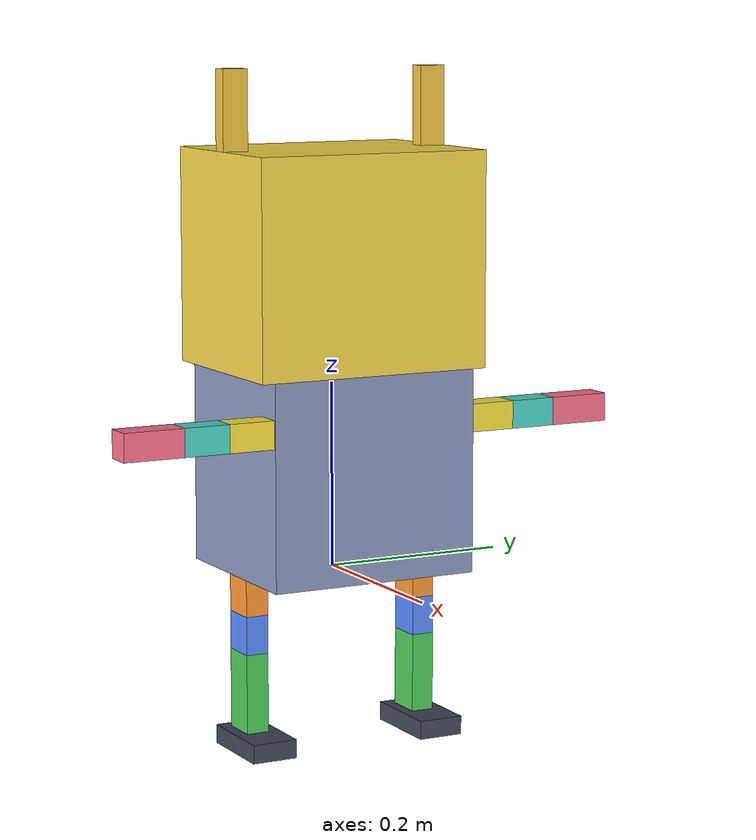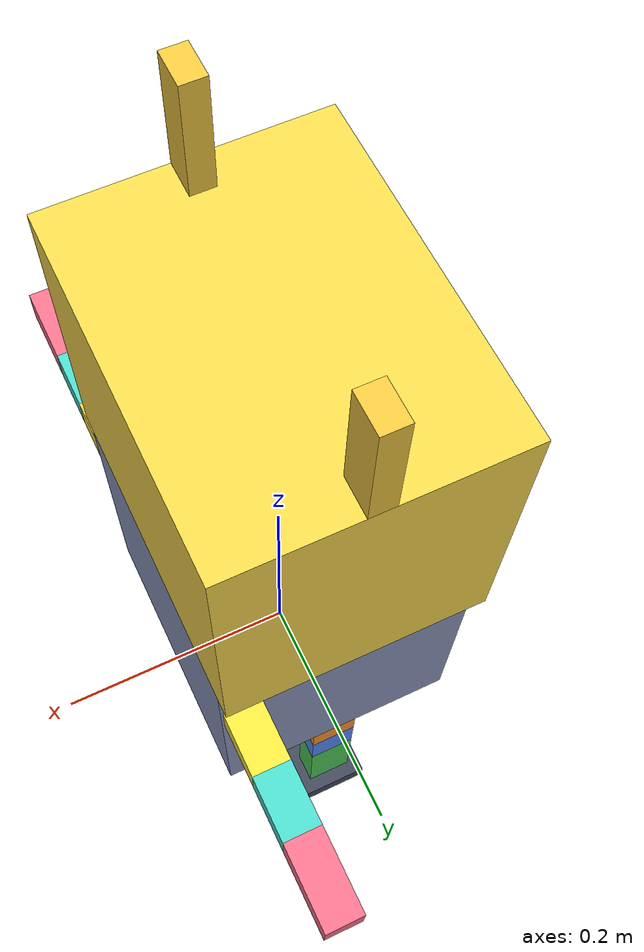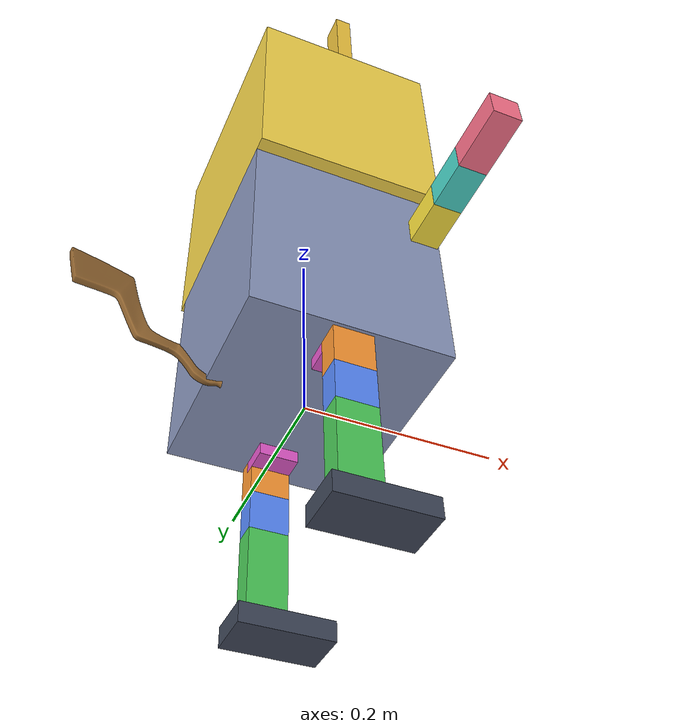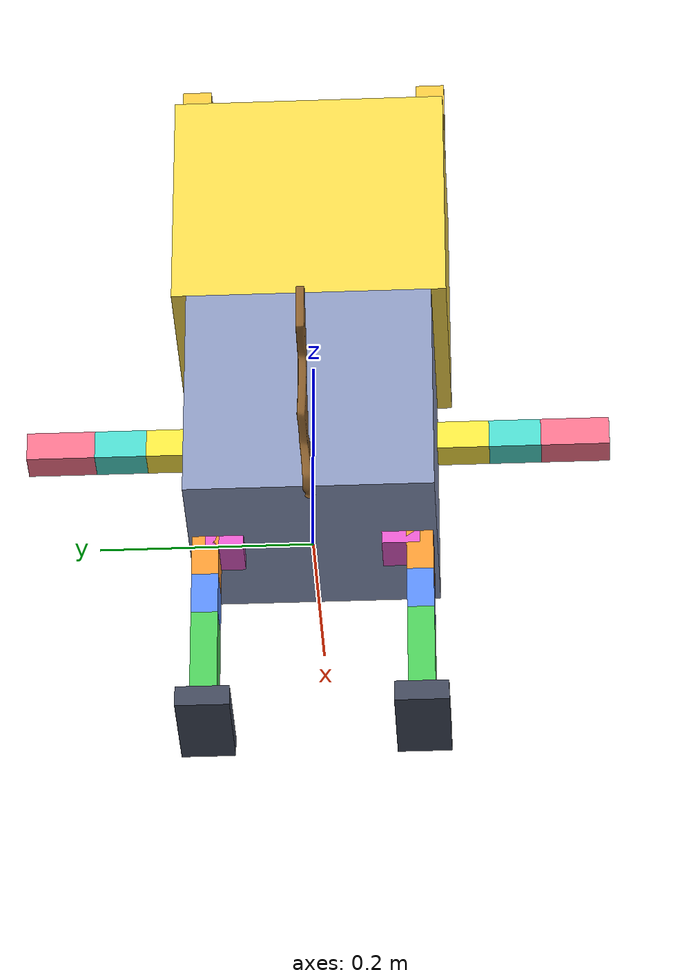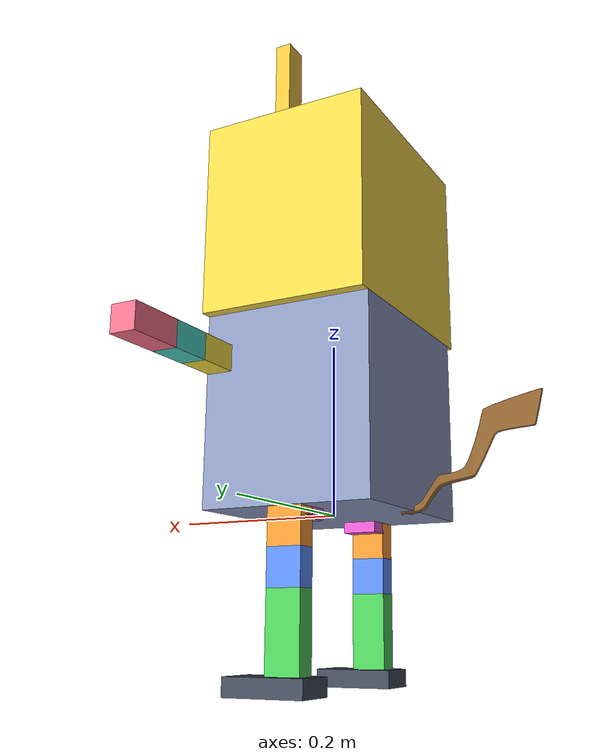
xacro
<?xml version="1.0"?>
<robot name="pikachu_sample_links" xmlns:xacro="http://www.ros.org/wiki/xacro">

  <!-- ① 工程主参数：14 项测量的唯一真相源（SI 单位：m）       -->
  <xacro:property name="tune_profile" value="pikachu_27dof_v1"/>
  <xacro:property name="tune_measurement_tolerance" value="0.0005"/>

  <xacro:property name="measure_ear_root_height"             value="0.449"/>
  <xacro:property name="measure_ear_root_half_width"         value="0.116"/>
  <xacro:property name="measure_head_pitch_height"           value="0.219"/>
  <xacro:property name="measure_shoulder_half_width"         value="0.116"/>
  <xacro:property name="measure_arm_plane_offset_x"          value="0.083"/>
  <xacro:property name="measure_upper_arm_length"            value="0.100"/>
  <xacro:property name="measure_forearm_length"              value="0.066"/>
  <xacro:property name="measure_hip_roll_half_width"         value="0.100"/>
  <xacro:property name="measure_torso_length"                value="0.166"/>
  <xacro:property name="measure_thigh_length"                value="0.083"/>
  <xacro:property name="measure_shank_length"                value="0.086"/>
  <xacro:property name="measure_foot_length_x"               value="0.093"/>
  <xacro:property name="measure_tail_axis_height_from_ankle" value="0.166"/>
  <xacro:property name="measure_tail_center_offset_x"        value="0.143"/>

  <!-- ② 派生参数：宏只引用这些别名；禁止在下游重复写测量常量 -->
  <xacro:property name="shoulder_width"     value="${measure_shoulder_half_width}"/>
  <xacro:property name="arm_forward_offset" value="${measure_arm_plane_offset_x}"/>
  <xacro:property name="upper_arm_len"      value="${measure_upper_arm_length}"/>
  <xacro:property name="lower_arm_len"      value="${measure_forearm_length}"/>
  <xacro:property name="torso_len"          value="${measure_torso_length}"/>
  <xacro:property name="thigh_len"          value="${measure_thigh_length}"/>
  <xacro:property name="shank_len"          value="${measure_shank_length}"/>
  <xacro:property name="foot_len"           value="${measure_foot_length_x}"/>
  <xacro:property name="hip_width"          value="${measure_hip_roll_half_width}"/>
  <xacro:property name="head_height"        value="${measure_head_pitch_height}"/>
  <xacro:property name="ear_height"         value="${measure_ear_root_height}"/>

  <!-- arm_pitch 与 arm_roll 轴严格共点；不再用隐含的 20 mm 肩连杆抵消肩宽。 -->
  <xacro:property name="arm_pitch_to_roll_y" value="${0.0}"/>
  <xacro:property name="arm_y_offset"   value="${shoulder_width}"/>
  <xacro:property name="arm_x_offset"   value="${arm_forward_offset}"/>
  <xacro:property name="arm_upper_z"    value="${upper_arm_len/2.0}"/>
  <xacro:property name="arm_lower_z"    value="${upper_arm_len/2.0}"/>
  <xacro:property name="shoulder_height" value="${torso_len}"/>

  <!-- hip_pitch→knee 的 z 差由髋部下段与大腿段各承担一半。 -->
  <xacro:property name="thigh_length"   value="${thigh_len/2.0}"/>
  <xacro:property name="shank_length"   value="${shank_len}"/>
  <xacro:property name="foot_len_x"     value="${foot_len}"/>

  <!-- ankle 轴 z=-(thigh+shank)，因此 tail_root_z 可严格闭环 M13。 -->
  <xacro:property name="tail_root_z" value="${-thigh_len - shank_len + measure_tail_axis_height_from_ankle}"/>

  <!-- ③ 其他细则：厚度 / 局部偏移 / 限位 / 尺寸 / 材质，按部件分区   -->
  <!-- base -->
  <!-- 骨盆半宽：躯干盒 y 宽 = 2×此（髋关节定位现由①hip_width 独立，与此解耦） -->
  <xacro:property name="pelvis_half_width" value="0.116"/>
  <!-- 躯干盒 x(前后) 厚度 -->
  <xacro:property name="torso_len_x"       value="0.2"/>
  <!-- 躯干盒 z(上下) 高度（肩关节定位现由①shoulder_height 独立，与此解耦 166） -->
  <xacro:property name="base_height"       value="0.219"/>

  <!-- leg -->
  <!-- hip_pitch→hip_roll 关节沿 y 偏移（骨盆横向段） -->
  <xacro:property name="hip_pitch_to_roll_y" value="0.0355"/>
  <!-- hip_roll→hip_yaw 关节沿 -z 偏移（骨盆下沿段）；与大腿段对分 hip_pitch→knee 总长 -->
  <xacro:property name="hip_roll_to_yaw_z"   value="${thigh_len/2}"/>
  <!-- 腿 box x(前后) 厚 -->
  <xacro:property name="leg_thick_x" value="0.04"/>
  <!-- 腿 box y(内外) 厚 -->
  <xacro:property name="leg_width_y" value="0.025"/>
  <xacro:property name="foot_wid_y" value="0.05"/>
  <xacro:property name="foot_hgt_z" value="0.02"/>
  <!-- arm -->
  <!-- 共点串联关节的数值稳定用小盒；不参与人体尺寸定义 -->
  <xacro:property name="joint_marker_size" value="0.004"/>
  <!-- 臂 box x / y 厚 -->
  <xacro:property name="arm_thick_x" value="0.03"/>
  <xacro:property name="arm_width_y" value="0.03"/>
  <!-- 臂 pitch/roll/yaw/elbow 关节限位（弧度） -->
  <xacro:property name="arm_lim_min" value="-1.57"/>
  <xacro:property name="arm_lim_max" value="1.57"/>
  <!-- head -->
  <xacro:property name="head_len_x"         value="0.2"/>
  <xacro:property name="head_wid_y"         value="0.26"/>
  <xacro:property name="head_hgt_z"         value="0.23"/>
  <!-- 头底部(转轴) 相对躯干顶的抬升 = 头高 - 躯干长（不含 box 半高，box 尺寸独立） -->
  <xacro:property name="head_bottom_offset" value="${head_height - shoulder_height}"/>
  <!-- 头关节限位（弧度） -->
  <xacro:property name="head_lim_min" value="-0.8"/>
  <xacro:property name="head_lim_max" value="0.8"/>
  <!-- ear -->
  <!-- 耳朵 横向偏移 / 全长 / 厚 / 宽 / 限位 -->
  <xacro:property name="ear_off_y"   value="${measure_ear_root_half_width}"/>
  <xacro:property name="ear_len"     value="0.085"/>
  <xacro:property name="ear_thick_x" value="0.018"/>
  <xacro:property name="ear_width_y" value="0.028"/>
  <xacro:property name="ear_lim_min" value="-0.6"/>
  <xacro:property name="ear_lim_max" value="0.8"/>
  <!-- 耳根相对 head_roll_link 原点(头底部中心/转轴) 的 z 抬升 = 耳高 - 头高；只抬升耳朵，头保持原位 -->
  <xacro:property name="ear_root_z" value="${ear_height - head_height}"/>
  <!-- tail -->
  <!-- 尾 box 全长 / 横向宽 / 厚 / 限位 -->
  <xacro:property name="tail_len"   value="0.095"/>
  <xacro:property name="tail_wid"   value="0.050"/>
  <xacro:property name="tail_thick" value="0.02"/>
  <xacro:property name="tail_lim_min" value="-1.2"/>
  <xacro:property name="tail_lim_max" value="1.2"/>
  <!-- 尾根位置由“尾 box 中心偏置”反推：root_x-tail_len/2 = -M14 -->
  <xacro:property name="tail_root_x" value="${-measure_tail_center_offset_x + tail_len/2.0}"/>
  <!-- ============ link box 边长（解耦：box 尺寸现独立；box 中心位置仍由①②关节距离定位） ============ -->
  <!-- 躯干 box -->
  <!-- 躯干盒 y 宽 = 骨盆半宽×2 -->
  <xacro:property name="torso_wid_y" value="${pelvis_half_width*2}"/>
  <!-- 躯干盒 z 高 = base_height（独立解耦，不再借用肩高） -->
  <xacro:property name="torso_hgt_z" value="${base_height}"/>
  <!-- 腿 box 各段长（截面 leg_thick_x / leg_width_y 见上） -->
  <!-- hip_pitch_link 横向(y)边长 -->
  <xacro:property name="leg_hip_pitch_box_len" value="${hip_pitch_to_roll_y}"/>
  <!-- hip_roll_link 骨盆段 z 边长 -->
  <xacro:property name="leg_hip_roll_box_len"  value="${hip_roll_to_yaw_z}"/>
  <!-- hip_yaw_link 大腿段 z 边长 -->
  <xacro:property name="leg_thigh_box_len"     value="${thigh_length}"/>
  <!-- knee_link 小腿段 z 边长 -->
  <xacro:property name="leg_shank_box_len"     value="${shank_length}"/>
  <!-- 臂 box 各段长（截面 arm_thick_x / arm_width_y 见上） -->
  <!-- arm_pitch_link 是 pitch/roll 共点的小型关节标记，不占用大臂长 -->
  <xacro:property name="arm_pitch_box_len" value="${joint_marker_size}"/>
  <!-- arm_roll_link 大臂 roll 段 z 边长 -->
  <xacro:property name="arm_roll_box_len"  value="${arm_upper_z}"/>
  <!-- arm_yaw_link 大臂 yaw 段 z 边长 -->
  <xacro:property name="arm_yaw_box_len"   value="${arm_lower_z}"/>
  <!-- elbow_link 小臂(手)段 z 边长 = 小臂长 -->
  <xacro:property name="arm_elbow_box_len" value="${lower_arm_len}"/>

  <!-- 材质（仅便于视觉区分；相邻关节不同色，左右对称） -->
  <!-- 躯干：淡蓝灰 -->
  <xacro:property name="mat_torso"   value="0.55 0.60 0.75 1"/>
  <!-- 臂段A(arm_pitch 肩)：紫 -->
  <xacro:property name="mat_arm_pitch"     value="0.75 0.35 1.00 1"/>
  <!-- 臂段B(arm_roll 上臂)：黄 -->
  <xacro:property name="mat_arm_roll"      value="1.00 0.90 0.25 1"/>
  <!-- 臂段C(arm_yaw 下臂)：青 -->
  <xacro:property name="mat_arm_yaw"       value="0.30 0.85 0.80 1"/>
  <!-- 臂段D(elbow 手)：珊瑚 -->
  <xacro:property name="mat_arm_elbow"     value="1.00 0.45 0.55 1"/>
  <!-- 腿段A(hip_pitch)：品红 -->
  <xacro:property name="mat_leg_hip_pitch" value="0.90 0.35 0.80 1"/>
  <!-- 腿段B(hip_roll)：橙 -->
  <xacro:property name="mat_leg_hip_roll"  value="1.00 0.60 0.20 1"/>
  <!-- 腿段C(hip_yaw 大腿)：蓝 -->
  <xacro:property name="mat_leg_hip_yaw"   value="0.35 0.55 1.00 1"/>
  <!-- 腿段D(knee 小腿)：绿 -->
  <xacro:property name="mat_leg_knee"      value="0.30 0.80 0.35 1"/>
  <!-- 腿段E(ankle 脚)：深灰蓝 -->
  <xacro:property name="mat_leg_ankle"     value="0.25 0.28 0.35 1"/>
  <!-- 头：亮黄 -->
  <xacro:property name="mat_head"    value="0.98 0.85 0.30 1"/>
  <!-- 耳朵：亮黄 -->
  <xacro:property name="mat_ear"         value="0.95 0.78 0.25 1"/>
  <!-- 尾巴：棕 -->
  <xacro:property name="mat_tail"        value="0.55 0.38 0.18 1"/>

  <!-- 材质定义（每段独立颜色，左右对称共用同一套）              -->
  <material name="torso_blue">
    <color rgba="${mat_torso}"/>
  </material>
  <material name="arm_pitch">
    <color rgba="${mat_arm_pitch}"/>
  </material>
  <material name="arm_roll">
    <color rgba="${mat_arm_roll}"/>
  </material>
  <material name="arm_yaw">
    <color rgba="${mat_arm_yaw}"/>
  </material>
  <material name="arm_elbow">
    <color rgba="${mat_arm_elbow}"/>
  </material>
  <material name="leg_hip_pitch">
    <color rgba="${mat_leg_hip_pitch}"/>
  </material>
  <material name="leg_hip_roll">
    <color rgba="${mat_leg_hip_roll}"/>
  </material>
  <material name="leg_hip_yaw">
    <color rgba="${mat_leg_hip_yaw}"/>
  </material>
  <material name="leg_knee">
    <color rgba="${mat_leg_knee}"/>
  </material>
  <material name="leg_ankle">
    <color rgba="${mat_leg_ankle}"/>
  </material>
  <material name="head_yellow">
    <color rgba="${mat_head}"/>
  </material>
  <material name="ear_yellow">
    <color rgba="${mat_ear}"/>
  </material>
  <material name="tail_brown">
    <color rgba="${mat_tail}"/>
  </material>

  <!-- 腿部宏：生成 pitch/roll/yaw/knee/ankle 五个 link             -->
  <!--   side: left | right     sn:  1 | -1（y 方向符号）      -->
  <xacro:macro name="leg_links" params="side sn">
    <!-- hip_pitch_link：覆盖到 roll 的横向(y)段 -->
    <link name="${side}_hip_pitch_link">
      <visual>
        <origin xyz="0 ${sn*hip_pitch_to_roll_y/2.0} 0" rpy="0 0 0"/>
        <geometry>
          <box size="${leg_thick_x} ${leg_hip_pitch_box_len} ${leg_width_y}"/>
        </geometry>
        <material name="leg_hip_pitch"/>
      </visual>
<collision>
        <origin xyz="0 ${sn*hip_pitch_to_roll_y/2.0} 0" rpy="0 0 0"/>
        <geometry>
          <box size="${leg_thick_x} ${leg_hip_pitch_box_len} ${leg_width_y}"/>
        </geometry>
      </collision>
    </link>

    <joint name="${side}_hip_roll_joint" type="revolute">
      <origin xyz="0 ${sn*hip_pitch_to_roll_y} 0" rpy="0 0 0"/>
      <parent link="${side}_hip_pitch_link"/>
      <child  link="${side}_hip_roll_link"/>
      <axis xyz="${sn} 0 0"/>
      <limit lower="-0.09" upper="0.26" effort="9.0" velocity="1"/>
    </joint>

    <!-- hip_roll_link：覆盖到 yaw 的 -z 骨盆段 -->
    <link name="${side}_hip_roll_link">
      <visual>
        <origin xyz="0 0 ${-hip_roll_to_yaw_z/2.0}" rpy="0 0 0"/>
        <geometry>
          <box size="${leg_thick_x} ${leg_width_y} ${leg_hip_roll_box_len}"/>
        </geometry>
        <material name="leg_hip_roll"/>
      </visual>
<collision>
        <origin xyz="0 0 ${-hip_roll_to_yaw_z/2.0}" rpy="0 0 0"/>
        <geometry>
          <box size="${leg_thick_x} ${leg_width_y} ${leg_hip_roll_box_len}"/>
        </geometry>
      </collision>
    </link>

    <joint name="${side}_hip_yaw_joint" type="revolute">
      <origin xyz="0 0 ${-hip_roll_to_yaw_z}" rpy="0 0 0"/>
      <parent link="${side}_hip_roll_link"/>
      <child  link="${side}_hip_yaw_link"/>
      <axis xyz="0 0 ${sn}"/>
      <limit lower="-0.09" upper="0.26" effort="9.0" velocity="1"/>
    </joint>

    <!-- hip_yaw_link：大腿段（thigh_length） -->
    <link name="${side}_hip_yaw_link">
      <visual>
        <origin xyz="0 0 ${-thigh_length/2.0}" rpy="0 0 0"/>
        <geometry>
          <box size="${leg_thick_x} ${leg_width_y} ${leg_thigh_box_len}"/>
        </geometry>
        <material name="leg_hip_yaw"/>
      </visual>
<collision>
        <origin xyz="0 0 ${-thigh_length/2.0}" rpy="0 0 0"/>
        <geometry>
          <box size="${leg_thick_x} ${leg_width_y} ${leg_thigh_box_len}"/>
        </geometry>
      </collision>
    </link>

    <joint name="${side}_knee_joint" type="revolute">
      <origin xyz="0 0 ${-thigh_length}" rpy="0 0 0"/>
      <parent link="${side}_hip_yaw_link"/>
      <child  link="${side}_knee_link"/>
      <axis xyz="0 1 0"/>
      <limit lower="0" upper="1.57" effort="12.5" velocity="3"/>
    </joint>

    <!-- knee_link：小腿段（shank_length） -->
    <link name="${side}_knee_link">
      <visual>
        <origin xyz="0 0 ${-shank_length/2.0}" rpy="0 0 0"/>
        <geometry>
          <box size="${leg_thick_x} ${leg_width_y} ${leg_shank_box_len}"/>
        </geometry>
        <material name="leg_knee"/>
      </visual>
<collision>
        <origin xyz="0 0 ${-shank_length/2.0}" rpy="0 0 0"/>
        <geometry>
          <box size="${leg_thick_x} ${leg_width_y} ${leg_shank_box_len}"/>
        </geometry>
      </collision>
    </link>

    <joint name="${side}_ankle_joint" type="revolute">
      <origin xyz="0 0 ${-shank_length}" rpy="0 0 0"/>
      <parent link="${side}_knee_link"/>
      <child  link="${side}_ankle_link"/>
      <axis xyz="0 -1 0"/>
      <limit lower="-0.52" upper="1.05" effort="9.0" velocity="2"/>
    </joint>

    <!-- ankle_link：脚掌（末端） -->
    <link name="${side}_ankle_link">
      <visual>
        <origin xyz="${foot_len_x/6.0} 0 ${-foot_hgt_z/2.0}" rpy="0 0 0"/>
        <geometry>
          <box size="${foot_len_x} ${foot_wid_y} ${foot_hgt_z}"/>
        </geometry>
        <material name="leg_ankle"/>
      </visual>
<collision>
        <origin xyz="${foot_len_x/6.0} 0 ${-foot_hgt_z/2.0}" rpy="0 0 0"/>
        <geometry>
          <box size="${foot_len_x} ${foot_wid_y} ${foot_hgt_z}"/>
        </geometry>
      </collision>
    </link>
  </xacro:macro>

  <!-- 手臂宏：生成 pitch/roll/yaw/elbow 四个 link（全部 revolute 可动） -->
  <xacro:macro name="arm_links" params="side sn">
    <!-- arm_pitch_link：pitch/roll 共点的关节标记 -->
    <link name="${side}_arm_pitch_link">
      <visual>
        <origin xyz="0 ${sn*arm_pitch_to_roll_y/2.0} 0" rpy="0 0 0"/>
        <geometry>
          <box size="${arm_pitch_box_len} ${arm_pitch_box_len} ${arm_pitch_box_len}"/>
        </geometry>
        <material name="arm_pitch"/>
      </visual>
<collision>
        <origin xyz="0 ${sn*arm_pitch_to_roll_y/2.0} 0" rpy="0 0 0"/>
        <geometry>
          <box size="${arm_pitch_box_len} ${arm_pitch_box_len} ${arm_pitch_box_len}"/>
        </geometry>
      </collision>
    </link>

    <joint name="${side}_arm_roll_joint" type="revolute">
      <!-- pitch/roll 轴严格共点；rpy ±90° 使零位大臂沿 ±y 水平外展 -->
      <origin xyz="0 0 0" rpy="${sn*1.5707963267948966} 0 0"/>
      <parent link="${side}_arm_pitch_link"/>
      <child  link="${side}_arm_roll_link"/>
      <axis xyz="${sn} 0 0"/>
      <limit lower="${arm_lim_min}" upper="${arm_lim_max}" effort="2.0" velocity="2"/>
    </joint>

    <!-- arm_roll_link：上臂段（arm_upper_z） -->
    <link name="${side}_arm_roll_link">
      <visual>
        <origin xyz="0 0 ${-arm_upper_z/2.0}" rpy="0 0 0"/>
        <geometry>
          <box size="${arm_thick_x} ${arm_width_y} ${arm_roll_box_len}"/>
        </geometry>
        <material name="arm_roll"/>
      </visual>
<collision>
        <origin xyz="0 0 ${-arm_upper_z/2.0}" rpy="0 0 0"/>
        <geometry>
          <box size="${arm_thick_x} ${arm_width_y} ${arm_roll_box_len}"/>
        </geometry>
      </collision>
    </link>

    <joint name="${side}_arm_yaw_joint" type="revolute">
      <origin xyz="0 0 ${-arm_upper_z}" rpy="0 0 0"/>
      <parent link="${side}_arm_roll_link"/>
      <child  link="${side}_arm_yaw_link"/>
      <axis xyz="0 0 ${sn}"/>
      <limit lower="${arm_lim_min}" upper="${arm_lim_max}" effort="2.0" velocity="2"/>
    </joint>

    <!-- arm_yaw_link：下臂段（arm_lower_z） -->
    <link name="${side}_arm_yaw_link">
      <visual>
        <origin xyz="0 0 ${-arm_lower_z/2.0}" rpy="0 0 0"/>
        <geometry>
          <box size="${arm_thick_x} ${arm_width_y} ${arm_yaw_box_len}"/>
        </geometry>
        <material name="arm_yaw"/>
      </visual>
<collision>
        <origin xyz="0 0 ${-arm_lower_z/2.0}" rpy="0 0 0"/>
        <geometry>
          <box size="${arm_thick_x} ${arm_width_y} ${arm_yaw_box_len}"/>
        </geometry>
      </collision>
    </link>

    <joint name="${side}_elbow_joint" type="revolute">
      <!-- rpy 清零：去除原折弯，默认手与前臂连成直线（展开） -->
      <origin xyz="0 0 ${-arm_lower_z}" rpy="0 0 0"/>
      <parent link="${side}_arm_yaw_link"/>
      <child  link="${side}_elbow_link"/>
      <axis xyz="0 ${-sn} 0"/>
      <limit lower="${arm_lim_min}" upper="${arm_lim_max}" effort="2.0" velocity="2"/>
    </joint>

    <!-- elbow_link：手（末端） -->
    <link name="${side}_elbow_link">
      <visual>
        <origin xyz="0 0 ${-arm_elbow_box_len/2.0}" rpy="0 0 0"/>
        <geometry>
          <box size="${arm_thick_x} ${arm_width_y} ${arm_elbow_box_len}"/>
        </geometry>
        <material name="arm_elbow"/>
      </visual>
<collision>
        <origin xyz="0 0 ${-arm_elbow_box_len/2.0}" rpy="0 0 0"/>
        <geometry>
          <box size="${arm_thick_x} ${arm_width_y} ${arm_elbow_box_len}"/>
        </geometry>
      </collision>
    </link>
  </xacro:macro>

  <!-- base_link：躯干（含 4 个与躯干相连的 base 关节）           -->
  <link name="base_link">
    <visual>
      <origin xyz="0 0 ${base_height/2.0}" rpy="0 0 0"/>
      <geometry>
        <box size="${torso_len_x} ${torso_wid_y} ${torso_hgt_z}"/>
      </geometry>
      <material name="torso_blue"/>
    </visual>
<collision>
      <origin xyz="0 0 ${base_height/2.0}" rpy="0 0 0"/>
      <geometry>
        <box size="${torso_len_x} ${torso_wid_y} ${torso_hgt_z}"/>
      </geometry>
    </collision>
  </link>

  <!-- 耳朵宏：生成 pitch_link + roll_joint + roll_link（两关节）  -->
  <!--   parent 为头顶的 head_roll_link；ear_pitch_joint 由外部定义  -->
  <xacro:macro name="ear_links" params="side sn">
    <!-- ear_pitch_link：空连杆（无 box，仅作两个 DOF 的中继节点，位于耳根） -->
    <link name="${side}_ear_pitch_link">
      <collision>
        <origin xyz="0 0 0" rpy="0 0 0"/>
        <geometry>
          <box size="${joint_marker_size} ${joint_marker_size} ${joint_marker_size}"/>
        </geometry>
      </collision>
    </link>

    <joint name="${side}_ear_roll_joint" type="revolute">
      <origin xyz="0 0 0" rpy="0 0 0"/>
      <parent link="${side}_ear_pitch_link"/>
      <child  link="${side}_ear_roll_link"/>
      <!-- 轴改 x：真正绕前后横轴 roll（耳朵左右倒伏/张开）；原 0 0 z 是 yaw -->
      <axis xyz="1 0 0"/>
      <limit lower="${ear_lim_min}" upper="${ear_lim_max}" effort="1.0" velocity="2"/>
    </joint>

    <!-- ear_roll_link：耳朵唯一 box，长度=耳全长 ear_len，从头顶竖直伸出 -->
    <link name="${side}_ear_roll_link">
      <visual>
        <origin xyz="0 0 ${ear_len/2.0}" rpy="0 0 0"/>
        <geometry>
          <box size="${ear_thick_x} ${ear_width_y} ${ear_len}"/>
        </geometry>
        <material name="ear_yellow"/>
      </visual>
<collision>
        <origin xyz="0 0 ${ear_len/2.0}" rpy="0 0 0"/>
        <geometry>
          <box size="${ear_thick_x} ${ear_width_y} ${ear_len}"/>
        </geometry>
      </collision>
    </link>
  </xacro:macro>

  <!-- 头部：pitch → yaw → roll 三段关节（原 head_joint 拆成 3 DOF）  -->
  <!--   三段共用 head_lim_* 限位；头大 box 挂在末端 head_roll_link -->
  <joint name="head_pitch_joint" type="revolute">
    <origin xyz="0 0 ${shoulder_height + head_bottom_offset}" rpy="0 0 0"/>
    <parent link="base_link"/>
    <child  link="head_pitch_link"/>
    <axis xyz="0 1 0"/>
    <limit lower="${head_lim_min}" upper="${head_lim_max}" effort="2.0" velocity="2"/>
  </joint>
  <!-- head_pitch_link：空连杆（无 box，仅作 pitch→yaw 两级 DOF 的中继） -->
  <link name="head_pitch_link">
      <collision>
        <origin xyz="0 0 0" rpy="0 0 0"/>
        <geometry>
          <box size="${joint_marker_size} ${joint_marker_size} ${joint_marker_size}"/>
        </geometry>
      </collision>
    </link>

  <joint name="head_yaw_joint" type="revolute">
    <origin xyz="0 0 0" rpy="0 0 0"/>
    <parent link="head_pitch_link"/>
    <child  link="head_yaw_link"/>
    <axis xyz="0 0 1"/>
    <limit lower="${head_lim_min}" upper="${head_lim_max}" effort="2.0" velocity="2"/>
  </joint>
  <link name="head_yaw_link">
      <collision>
        <origin xyz="0 0 0" rpy="0 0 0"/>
        <geometry>
          <box size="${joint_marker_size} ${joint_marker_size} ${joint_marker_size}"/>
        </geometry>
      </collision>
    </link>

  <joint name="head_roll_joint" type="revolute">
    <origin xyz="0 0 0" rpy="0 0 0"/>
    <parent link="head_yaw_link"/>
    <child  link="head_roll_link"/>
    <axis xyz="1 0 0"/>
    <limit lower="${head_lim_min}" upper="${head_lim_max}" effort="2.0" velocity="2"/>
  </joint>
  <!-- head_roll_link：实心头（原 head_link 大 box，末端） -->
  <link name="head_roll_link">
    <visual>
      <origin xyz="0 0 ${head_hgt_z/2.0}" rpy="0 0 0"/>
      <geometry>
        <box size="${head_len_x} ${head_wid_y} ${head_hgt_z}"/>
      </geometry>
      <material name="head_yellow"/>
    </visual>
<collision>
      <origin xyz="0 0 ${head_hgt_z/2.0}" rpy="0 0 0"/>
      <geometry>
        <box size="${head_len_x} ${head_wid_y} ${head_hgt_z}"/>
      </geometry>
    </collision>
  </link>

  <!-- 左耳 / 右耳 pitch：head_roll_link → 耳（roll 由 ear_links 宏生成） -->
  <joint name="left_ear_pitch_joint" type="revolute">
    <origin xyz="0 ${ear_off_y} ${ear_root_z}" rpy="0 0 0"/>
    <parent link="head_roll_link"/>
    <child  link="left_ear_pitch_link"/>
    <axis xyz="0 1 0"/>
    <limit lower="${ear_lim_min}" upper="${ear_lim_max}" effort="1.0" velocity="2"/>
  </joint>
  <joint name="right_ear_pitch_joint" type="revolute">
    <origin xyz="0 ${-ear_off_y} ${ear_root_z}" rpy="0 0 0"/>
    <parent link="head_roll_link"/>
    <child  link="right_ear_pitch_link"/>
    <axis xyz="0 1 0"/>
    <limit lower="${ear_lim_min}" upper="${ear_lim_max}" effort="1.0" velocity="2"/>
  </joint>

  <!-- 尾巴：tail_pitch → tail_yaw 两关节（躯干背面伸出）             -->
  <joint name="tail_pitch_joint" type="revolute">
    <origin xyz="${tail_root_x} 0 ${tail_root_z}" rpy="0 0 0"/>
    <parent link="base_link"/>
    <child  link="tail_pitch_link"/>
    <axis xyz="0 1 0"/>
    <limit lower="${tail_lim_min}" upper="${tail_lim_max}" effort="2.0" velocity="2"/>
  </joint>
  <!-- tail_pitch_link：空连杆（无 box，仅作两个 DOF 的中继节点，位于尾根） -->
  <link name="tail_pitch_link">
      <collision>
        <origin xyz="0 0 0" rpy="0 0 0"/>
        <geometry>
          <box size="${joint_marker_size} ${joint_marker_size} ${joint_marker_size}"/>
        </geometry>
      </collision>
    </link>

  <joint name="tail_yaw_joint" type="revolute">
    <origin xyz="0 0 0" rpy="0 0 0"/>
    <parent link="tail_pitch_link"/>
    <child  link="tail_yaw_link"/>
    <axis xyz="0 0 1"/>
    <limit lower="${tail_lim_min}" upper="${tail_lim_max}" effort="2.0" velocity="2"/>
  </joint>
  <!-- tail_yaw_link：视觉用 STL mesh（尾造型）；碰撞仍用 box（tail_len×tail_wid×tail_thick） -->
  <link name="tail_yaw_link">
    <visual>
      <origin xyz="-0.07 0 0" rpy="0 0 1.57"/>
      <geometry>
        <mesh filename="meshes/pikachu_skin_self_rig_mesh_T3Plane-edited.stl"/>
      </geometry>
      <material name="tail_brown"/>
    </visual>
<collision>
      <origin xyz="${-tail_len/2.0} 0 0" rpy="0 0 0"/>
      <geometry>
        <box size="${tail_len} ${tail_wid} ${tail_thick}"/>
      </geometry>
    </collision>
  </link>

  <!-- 髋 pitch：型→left_hip_pitch_link / right_hip_pitch_link -->
  <joint name="left_hip_pitch_joint" type="revolute">
    <origin xyz="0 ${hip_width - hip_pitch_to_roll_y} 0" rpy="0 0 0"/>
    <parent link="base_link"/>
    <child  link="left_hip_pitch_link"/>
    <axis xyz="0 -1 0"/>
    <limit lower="0" upper="2.44" effort="12.5" velocity="2"/>
  </joint>
  <joint name="right_hip_pitch_joint" type="revolute">
    <origin xyz="0 ${hip_pitch_to_roll_y - hip_width} 0" rpy="0 0 0"/>
    <parent link="base_link"/>
    <child  link="right_hip_pitch_link"/>
    <axis xyz="0 -1 0"/>
    <limit lower="0" upper="2.44" effort="12.5" velocity="2"/>
  </joint>

  <!-- 臂 pitch：型→left/right_arm_pitch_link（固定，抬升 shoulder_height） -->
  <joint name="left_arm_pitch_joint" type="revolute">
    <origin xyz="${arm_x_offset} ${arm_y_offset} ${shoulder_height}" rpy="0 0 0"/>
    <parent link="base_link"/>
    <child  link="left_arm_pitch_link"/>
    <axis xyz="0 -1 0"/>
    <limit lower="${arm_lim_min}" upper="${arm_lim_max}" effort="2.0" velocity="2"/>
  </joint>
  <joint name="right_arm_pitch_joint" type="revolute">
    <origin xyz="${arm_x_offset} ${-arm_y_offset} ${shoulder_height}" rpy="0 0 0"/>
    <parent link="base_link"/>
    <child  link="right_arm_pitch_link"/>
    <axis xyz="0 -1 0"/>
    <limit lower="${arm_lim_min}" upper="${arm_lim_max}" effort="2.0" velocity="2"/>
  </joint>

  <!-- 组装：左腿 / 右腿 / 左臂 / 右臂                           -->
  <xacro:leg_links side="left"  sn="1"></xacro:leg_links>
  <xacro:leg_links side="right" sn="-1"></xacro:leg_links>

  <xacro:arm_links side="left"  sn="1"></xacro:arm_links>
  <xacro:arm_links side="right" sn="-1"></xacro:arm_links>

  <xacro:ear_links side="left"  sn="1"></xacro:ear_links>
  <xacro:ear_links side="right" sn="-1"></xacro:ear_links>

</robot>
